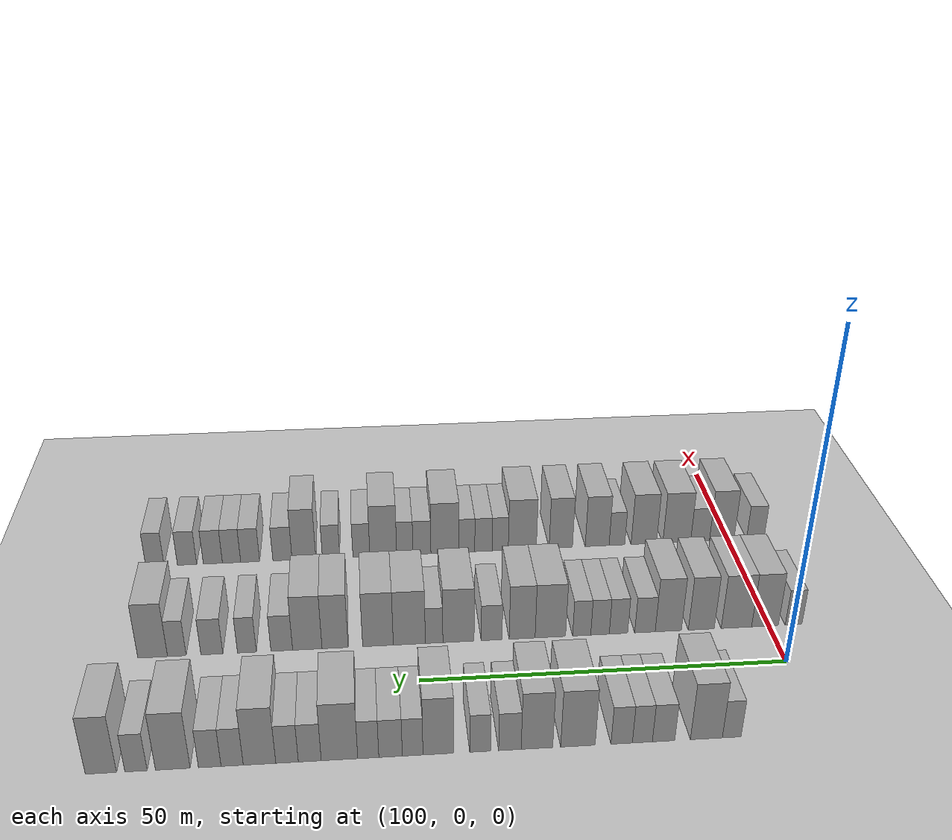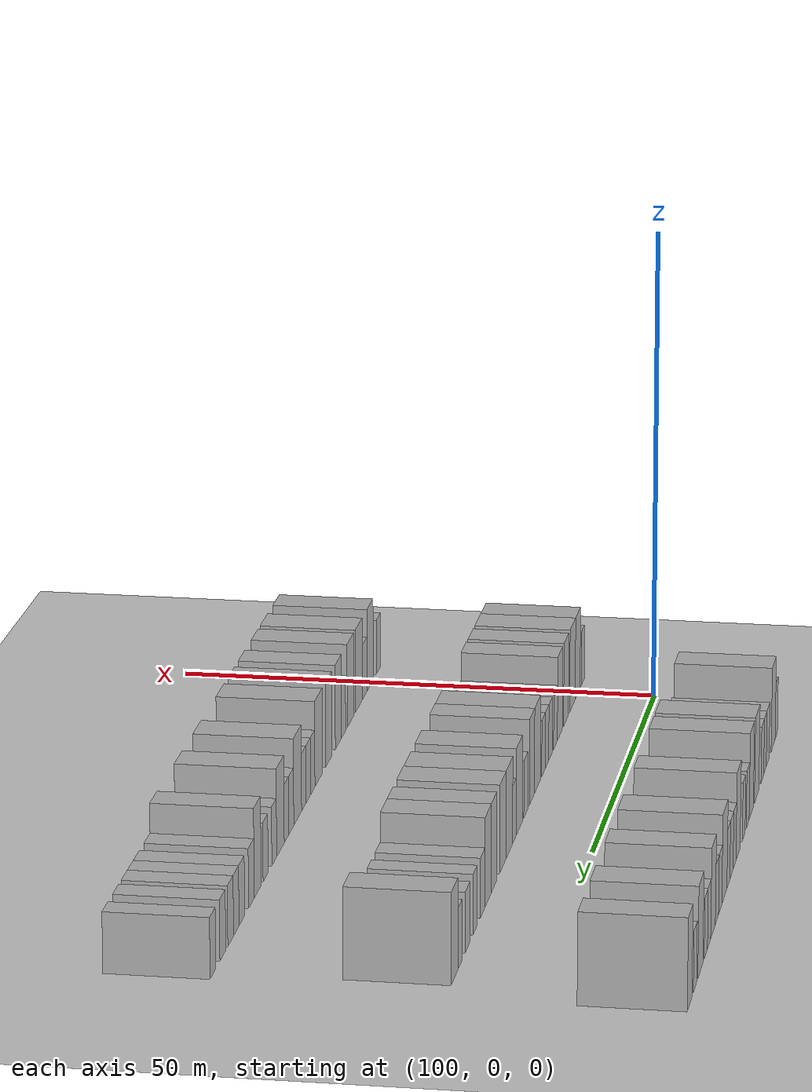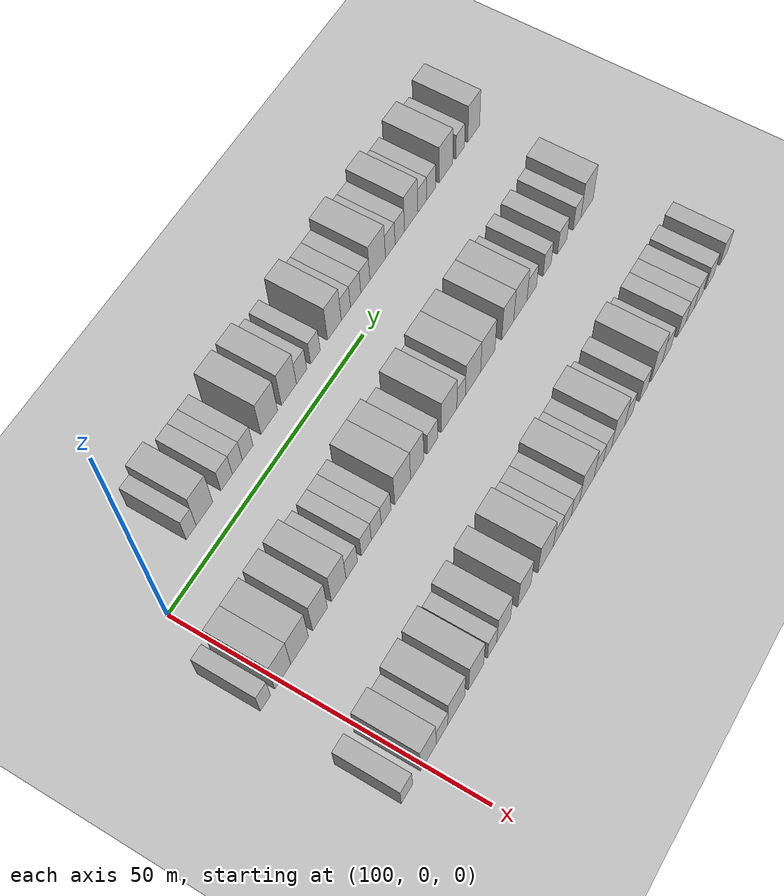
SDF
<sdf version="1.6">
 <world name="default">
  <include>
   <name>ground_plane_2</name>
   <uri>model://HANNAS_ground_plane</uri>
   <pose>100 0 0  0 0 0</pose>
  </include>
  <model name="building_658">
   <static>1</static>
   <pose>91.0000 11.3499 0 0.000000 0.000000 0.000000</pose>
   <link name="link">
    <pose>0 0 3.00 0 0 0</pose>
    <collision name="collision"><geometry><box><size>10.0000 2.4059 6.0000</size></box></geometry></collision>
    <visual name="visual">
     <cast_shadows>0</cast_shadows>
     <geometry><box><size>10.0000 2.4059 6.0000</size></box></geometry>
     <material>
      <script>
       <uri>model://HANNAS_wall/materials/scripts</uri>
       <uri>model://HANNAS_wall/materials/textures</uri>
       <name>vrc/HANNAS_wall</name>
      </script>
     </material>
    </visual>
   </link>
  </model>
  <model name="building_659">
   <static>1</static>
   <pose>91.0000 14.5982 0 0.000000 0.000000 0.000000</pose>
   <link name="link">
    <pose>0 0 4.50 0 0 0</pose>
    <collision name="collision"><geometry><box><size>10.0000 4.0908 9.0000</size></box></geometry></collision>
    <visual name="visual">
     <cast_shadows>0</cast_shadows>
     <geometry><box><size>10.0000 4.0908 9.0000</size></box></geometry>
     <material>
      <script>
       <uri>model://HANNAS_wall/materials/scripts</uri>
       <uri>model://HANNAS_wall/materials/textures</uri>
       <name>vrc/HANNAS_wall</name>
      </script>
     </material>
    </visual>
   </link>
  </model>
  <model name="building_660">
   <static>1</static>
   <pose>91.0000 20.0712 0 0.000000 0.000000 0.000000</pose>
   <link name="link">
    <pose>0 0 3.00 0 0 0</pose>
    <collision name="collision"><geometry><box><size>10.0000 2.8552 6.0000</size></box></geometry></collision>
    <visual name="visual">
     <cast_shadows>0</cast_shadows>
     <geometry><box><size>10.0000 2.8552 6.0000</size></box></geometry>
     <material>
      <script>
       <uri>model://HANNAS_wall/materials/scripts</uri>
       <uri>model://HANNAS_wall/materials/textures</uri>
       <name>vrc/HANNAS_wall</name>
      </script>
     </material>
    </visual>
   </link>
  </model>
  <model name="building_661">
   <static>1</static>
   <pose>91.0000 22.7672 0 0.000000 0.000000 0.000000</pose>
   <link name="link">
    <pose>0 0 3.00 0 0 0</pose>
    <collision name="collision"><geometry><box><size>10.0000 2.5369 6.0000</size></box></geometry></collision>
    <visual name="visual">
     <cast_shadows>0</cast_shadows>
     <geometry><box><size>10.0000 2.5369 6.0000</size></box></geometry>
     <material>
      <script>
       <uri>model://HANNAS_wall/materials/scripts</uri>
       <uri>model://HANNAS_wall/materials/textures</uri>
       <name>vrc/HANNAS_wall</name>
      </script>
     </material>
    </visual>
   </link>
  </model>
  <model name="building_662">
   <static>1</static>
   <pose>91.0000 25.3934 0 0.000000 0.000000 0.000000</pose>
   <link name="link">
    <pose>0 0 3.00 0 0 0</pose>
    <collision name="collision"><geometry><box><size>10.0000 2.7154 6.0000</size></box></geometry></collision>
    <visual name="visual">
     <cast_shadows>0</cast_shadows>
     <geometry><box><size>10.0000 2.7154 6.0000</size></box></geometry>
     <material>
      <script>
       <uri>model://HANNAS_wall/materials/scripts</uri>
       <uri>model://HANNAS_wall/materials/textures</uri>
       <name>vrc/HANNAS_wall</name>
      </script>
     </material>
    </visual>
   </link>
  </model>
  <model name="building_663">
   <static>1</static>
   <pose>91.0000 30.9321 0 0.000000 0.000000 0.000000</pose>
   <link name="link">
    <pose>0 0 4.50 0 0 0</pose>
    <collision name="collision"><geometry><box><size>10.0000 4.3619 9.0000</size></box></geometry></collision>
    <visual name="visual">
     <cast_shadows>0</cast_shadows>
     <geometry><box><size>10.0000 4.3619 9.0000</size></box></geometry>
     <material>
      <script>
       <uri>model://HANNAS_wall/materials/scripts</uri>
       <uri>model://HANNAS_wall/materials/textures</uri>
       <name>vrc/HANNAS_wall</name>
      </script>
     </material>
    </visual>
   </link>
  </model>
  <model name="building_664">
   <static>1</static>
   <pose>91.0000 36.0992 0 0.000000 0.000000 0.000000</pose>
   <link name="link">
    <pose>0 0 4.50 0 0 0</pose>
    <collision name="collision"><geometry><box><size>10.0000 3.9723 9.0000</size></box></geometry></collision>
    <visual name="visual">
     <cast_shadows>0</cast_shadows>
     <geometry><box><size>10.0000 3.9723 9.0000</size></box></geometry>
     <material>
      <script>
       <uri>model://HANNAS_wall/materials/scripts</uri>
       <uri>model://HANNAS_wall/materials/textures</uri>
       <name>vrc/HANNAS_wall</name>
      </script>
     </material>
    </visual>
   </link>
  </model>
  <model name="building_665">
   <static>1</static>
   <pose>91.0000 39.4949 0 0.000000 0.000000 0.000000</pose>
   <link name="link">
    <pose>0 0 3.00 0 0 0</pose>
    <collision name="collision"><geometry><box><size>10.0000 2.8190 6.0000</size></box></geometry></collision>
    <visual name="visual">
     <cast_shadows>0</cast_shadows>
     <geometry><box><size>10.0000 2.8190 6.0000</size></box></geometry>
     <material>
      <script>
       <uri>model://HANNAS_wall/materials/scripts</uri>
       <uri>model://HANNAS_wall/materials/textures</uri>
       <name>vrc/HANNAS_wall</name>
      </script>
     </material>
    </visual>
   </link>
  </model>
  <model name="building_666">
   <static>1</static>
   <pose>91.0000 43.2075 0 0.000000 0.000000 0.000000</pose>
   <link name="link">
    <pose>0 0 3.00 0 0 0</pose>
    <collision name="collision"><geometry><box><size>10.0000 2.6063 6.0000</size></box></geometry></collision>
    <visual name="visual">
     <cast_shadows>0</cast_shadows>
     <geometry><box><size>10.0000 2.6063 6.0000</size></box></geometry>
     <material>
      <script>
       <uri>model://HANNAS_wall/materials/scripts</uri>
       <uri>model://HANNAS_wall/materials/textures</uri>
       <name>vrc/HANNAS_wall</name>
      </script>
     </material>
    </visual>
   </link>
  </model>
  <model name="building_667">
   <static>1</static>
   <pose>91.0000 48.4225 0 0.000000 0.000000 0.000000</pose>
   <link name="link">
    <pose>0 0 4.50 0 0 0</pose>
    <collision name="collision"><geometry><box><size>10.0000 3.8235 9.0000</size></box></geometry></collision>
    <visual name="visual">
     <cast_shadows>0</cast_shadows>
     <geometry><box><size>10.0000 3.8235 9.0000</size></box></geometry>
     <material>
      <script>
       <uri>model://HANNAS_wall/materials/scripts</uri>
       <uri>model://HANNAS_wall/materials/textures</uri>
       <name>vrc/HANNAS_wall</name>
      </script>
     </material>
    </visual>
   </link>
  </model>
  <model name="building_668">
   <static>1</static>
   <pose>91.0000 51.6144 0 0.000000 0.000000 0.000000</pose>
   <link name="link">
    <pose>0 0 3.00 0 0 0</pose>
    <collision name="collision"><geometry><box><size>10.0000 2.5603 6.0000</size></box></geometry></collision>
    <visual name="visual">
     <cast_shadows>0</cast_shadows>
     <geometry><box><size>10.0000 2.5603 6.0000</size></box></geometry>
     <material>
      <script>
       <uri>model://HANNAS_wall/materials/scripts</uri>
       <uri>model://HANNAS_wall/materials/textures</uri>
       <name>vrc/HANNAS_wall</name>
      </script>
     </material>
    </visual>
   </link>
  </model>
  <model name="building_669">
   <static>1</static>
   <pose>91.0000 54.3471 0 0.000000 0.000000 0.000000</pose>
   <link name="link">
    <pose>0 0 3.00 0 0 0</pose>
    <collision name="collision"><geometry><box><size>10.0000 2.9051 6.0000</size></box></geometry></collision>
    <visual name="visual">
     <cast_shadows>0</cast_shadows>
     <geometry><box><size>10.0000 2.9051 6.0000</size></box></geometry>
     <material>
      <script>
       <uri>model://HANNAS_wall/materials/scripts</uri>
       <uri>model://HANNAS_wall/materials/textures</uri>
       <name>vrc/HANNAS_wall</name>
      </script>
     </material>
    </visual>
   </link>
  </model>
  <model name="building_670">
   <static>1</static>
   <pose>91.0000 57.0962 0 0.000000 0.000000 0.000000</pose>
   <link name="link">
    <pose>0 0 3.00 0 0 0</pose>
    <collision name="collision"><geometry><box><size>10.0000 2.5932 6.0000</size></box></geometry></collision>
    <visual name="visual">
     <cast_shadows>0</cast_shadows>
     <geometry><box><size>10.0000 2.5932 6.0000</size></box></geometry>
     <material>
      <script>
       <uri>model://HANNAS_wall/materials/scripts</uri>
       <uri>model://HANNAS_wall/materials/textures</uri>
       <name>vrc/HANNAS_wall</name>
      </script>
     </material>
    </visual>
   </link>
  </model>
  <model name="building_671">
   <static>1</static>
   <pose>91.0000 60.6395 0 0.000000 0.000000 0.000000</pose>
   <link name="link">
    <pose>0 0 4.50 0 0 0</pose>
    <collision name="collision"><geometry><box><size>10.0000 4.4934 9.0000</size></box></geometry></collision>
    <visual name="visual">
     <cast_shadows>0</cast_shadows>
     <geometry><box><size>10.0000 4.4934 9.0000</size></box></geometry>
     <material>
      <script>
       <uri>model://HANNAS_wall/materials/scripts</uri>
       <uri>model://HANNAS_wall/materials/textures</uri>
       <name>vrc/HANNAS_wall</name>
      </script>
     </material>
    </visual>
   </link>
  </model>
  <model name="building_672">
   <static>1</static>
   <pose>91.0000 64.2909 0 0.000000 0.000000 0.000000</pose>
   <link name="link">
    <pose>0 0 3.00 0 0 0</pose>
    <collision name="collision"><geometry><box><size>10.0000 2.8095 6.0000</size></box></geometry></collision>
    <visual name="visual">
     <cast_shadows>0</cast_shadows>
     <geometry><box><size>10.0000 2.8095 6.0000</size></box></geometry>
     <material>
      <script>
       <uri>model://HANNAS_wall/materials/scripts</uri>
       <uri>model://HANNAS_wall/materials/textures</uri>
       <name>vrc/HANNAS_wall</name>
      </script>
     </material>
    </visual>
   </link>
  </model>
  <model name="building_673">
   <static>1</static>
   <pose>91.0000 67.0746 0 0.000000 0.000000 0.000000</pose>
   <link name="link">
    <pose>0 0 3.00 0 0 0</pose>
    <collision name="collision"><geometry><box><size>10.0000 2.7578 6.0000</size></box></geometry></collision>
    <visual name="visual">
     <cast_shadows>0</cast_shadows>
     <geometry><box><size>10.0000 2.7578 6.0000</size></box></geometry>
     <material>
      <script>
       <uri>model://HANNAS_wall/materials/scripts</uri>
       <uri>model://HANNAS_wall/materials/textures</uri>
       <name>vrc/HANNAS_wall</name>
      </script>
     </material>
    </visual>
   </link>
  </model>
  <model name="building_674">
   <static>1</static>
   <pose>91.0000 70.4350 0 0.000000 0.000000 0.000000</pose>
   <link name="link">
    <pose>0 0 4.50 0 0 0</pose>
    <collision name="collision"><geometry><box><size>10.0000 3.9631 9.0000</size></box></geometry></collision>
    <visual name="visual">
     <cast_shadows>0</cast_shadows>
     <geometry><box><size>10.0000 3.9631 9.0000</size></box></geometry>
     <material>
      <script>
       <uri>model://HANNAS_wall/materials/scripts</uri>
       <uri>model://HANNAS_wall/materials/textures</uri>
       <name>vrc/HANNAS_wall</name>
      </script>
     </material>
    </visual>
   </link>
  </model>
  <model name="building_675">
   <static>1</static>
   <pose>91.0000 73.7645 0 0.000000 0.000000 0.000000</pose>
   <link name="link">
    <pose>0 0 3.00 0 0 0</pose>
    <collision name="collision"><geometry><box><size>10.0000 2.6958 6.0000</size></box></geometry></collision>
    <visual name="visual">
     <cast_shadows>0</cast_shadows>
     <geometry><box><size>10.0000 2.6958 6.0000</size></box></geometry>
     <material>
      <script>
       <uri>model://HANNAS_wall/materials/scripts</uri>
       <uri>model://HANNAS_wall/materials/textures</uri>
       <name>vrc/HANNAS_wall</name>
      </script>
     </material>
    </visual>
   </link>
  </model>
  <model name="building_676">
   <static>1</static>
   <pose>91.0000 76.4861 0 0.000000 0.000000 0.000000</pose>
   <link name="link">
    <pose>0 0 3.00 0 0 0</pose>
    <collision name="collision"><geometry><box><size>10.0000 2.7475 6.0000</size></box></geometry></collision>
    <visual name="visual">
     <cast_shadows>0</cast_shadows>
     <geometry><box><size>10.0000 2.7475 6.0000</size></box></geometry>
     <material>
      <script>
       <uri>model://HANNAS_wall/materials/scripts</uri>
       <uri>model://HANNAS_wall/materials/textures</uri>
       <name>vrc/HANNAS_wall</name>
      </script>
     </material>
    </visual>
   </link>
  </model>
  <model name="building_677">
   <static>1</static>
   <pose>91.0000 80.9545 0 0.000000 0.000000 0.000000</pose>
   <link name="link">
    <pose>0 0 4.50 0 0 0</pose>
    <collision name="collision"><geometry><box><size>10.0000 4.1893 9.0000</size></box></geometry></collision>
    <visual name="visual">
     <cast_shadows>0</cast_shadows>
     <geometry><box><size>10.0000 4.1893 9.0000</size></box></geometry>
     <material>
      <script>
       <uri>model://HANNAS_wall/materials/scripts</uri>
       <uri>model://HANNAS_wall/materials/textures</uri>
       <name>vrc/HANNAS_wall</name>
      </script>
     </material>
    </visual>
   </link>
  </model>
  <model name="building_678">
   <static>1</static>
   <pose>91.0000 85.3901 0 0.000000 0.000000 0.000000</pose>
   <link name="link">
    <pose>0 0 3.00 0 0 0</pose>
    <collision name="collision"><geometry><box><size>10.0000 2.6819 6.0000</size></box></geometry></collision>
    <visual name="visual">
     <cast_shadows>0</cast_shadows>
     <geometry><box><size>10.0000 2.6819 6.0000</size></box></geometry>
     <material>
      <script>
       <uri>model://HANNAS_wall/materials/scripts</uri>
       <uri>model://HANNAS_wall/materials/textures</uri>
       <name>vrc/HANNAS_wall</name>
      </script>
     </material>
    </visual>
   </link>
  </model>
  <model name="building_679">
   <static>1</static>
   <pose>91.0000 89.6052 0 0.000000 0.000000 0.000000</pose>
   <link name="link">
    <pose>0 0 4.50 0 0 0</pose>
    <collision name="collision"><geometry><box><size>10.0000 3.7483 9.0000</size></box></geometry></collision>
    <visual name="visual">
     <cast_shadows>0</cast_shadows>
     <geometry><box><size>10.0000 3.7483 9.0000</size></box></geometry>
     <material>
      <script>
       <uri>model://HANNAS_wall/materials/scripts</uri>
       <uri>model://HANNAS_wall/materials/textures</uri>
       <name>vrc/HANNAS_wall</name>
      </script>
     </material>
    </visual>
   </link>
  </model>
  <model name="building_855">
   <static>1</static>
   <pose>113.0000 -3.5424 0 0.000000 0.000000 0.000000</pose>
   <link name="link">
    <pose>0 0 3.00 0 0 0</pose>
    <collision name="collision"><geometry><box><size>10.0000 2.4279 6.0000</size></box></geometry></collision>
    <visual name="visual">
     <cast_shadows>0</cast_shadows>
     <geometry><box><size>10.0000 2.4279 6.0000</size></box></geometry>
     <material>
      <script>
       <uri>model://HANNAS_wall/materials/scripts</uri>
       <uri>model://HANNAS_wall/materials/textures</uri>
       <name>vrc/HANNAS_wall</name>
      </script>
     </material>
    </visual>
   </link>
  </model>
  <model name="building_856">
   <static>1</static>
   <pose>113.0000 0.6020 0 0.000000 0.000000 0.000000</pose>
   <link name="link">
    <pose>0 0 4.50 0 0 0</pose>
    <collision name="collision"><geometry><box><size>10.0000 3.8607 9.0000</size></box></geometry></collision>
    <visual name="visual">
     <cast_shadows>0</cast_shadows>
     <geometry><box><size>10.0000 3.8607 9.0000</size></box></geometry>
     <material>
      <script>
       <uri>model://HANNAS_wall/materials/scripts</uri>
       <uri>model://HANNAS_wall/materials/textures</uri>
       <name>vrc/HANNAS_wall</name>
      </script>
     </material>
    </visual>
   </link>
  </model>
  <model name="building_857">
   <static>1</static>
   <pose>113.0000 4.7238 0 0.000000 0.000000 0.000000</pose>
   <link name="link">
    <pose>0 0 4.50 0 0 0</pose>
    <collision name="collision"><geometry><box><size>10.0000 4.3829 9.0000</size></box></geometry></collision>
    <visual name="visual">
     <cast_shadows>0</cast_shadows>
     <geometry><box><size>10.0000 4.3829 9.0000</size></box></geometry>
     <material>
      <script>
       <uri>model://HANNAS_wall/materials/scripts</uri>
       <uri>model://HANNAS_wall/materials/textures</uri>
       <name>vrc/HANNAS_wall</name>
      </script>
     </material>
    </visual>
   </link>
  </model>
  <model name="building_858">
   <static>1</static>
   <pose>113.0000 9.7739 0 0.000000 0.000000 0.000000</pose>
   <link name="link">
    <pose>0 0 4.50 0 0 0</pose>
    <collision name="collision"><geometry><box><size>10.0000 3.7174 9.0000</size></box></geometry></collision>
    <visual name="visual">
     <cast_shadows>0</cast_shadows>
     <geometry><box><size>10.0000 3.7174 9.0000</size></box></geometry>
     <material>
      <script>
       <uri>model://HANNAS_wall/materials/scripts</uri>
       <uri>model://HANNAS_wall/materials/textures</uri>
       <name>vrc/HANNAS_wall</name>
      </script>
     </material>
    </visual>
   </link>
  </model>
  <model name="building_859">
   <static>1</static>
   <pose>113.0000 14.5035 0 0.000000 0.000000 0.000000</pose>
   <link name="link">
    <pose>0 0 4.50 0 0 0</pose>
    <collision name="collision"><geometry><box><size>10.0000 3.7417 9.0000</size></box></geometry></collision>
    <visual name="visual">
     <cast_shadows>0</cast_shadows>
     <geometry><box><size>10.0000 3.7417 9.0000</size></box></geometry>
     <material>
      <script>
       <uri>model://HANNAS_wall/materials/scripts</uri>
       <uri>model://HANNAS_wall/materials/textures</uri>
       <name>vrc/HANNAS_wall</name>
      </script>
     </material>
    </visual>
   </link>
  </model>
  <model name="building_860">
   <static>1</static>
   <pose>113.0000 17.8376 0 0.000000 0.000000 0.000000</pose>
   <link name="link">
    <pose>0 0 3.00 0 0 0</pose>
    <collision name="collision"><geometry><box><size>10.0000 2.9266 6.0000</size></box></geometry></collision>
    <visual name="visual">
     <cast_shadows>0</cast_shadows>
     <geometry><box><size>10.0000 2.9266 6.0000</size></box></geometry>
     <material>
      <script>
       <uri>model://HANNAS_wall/materials/scripts</uri>
       <uri>model://HANNAS_wall/materials/textures</uri>
       <name>vrc/HANNAS_wall</name>
      </script>
     </material>
    </visual>
   </link>
  </model>
  <model name="building_861">
   <static>1</static>
   <pose>113.0000 21.6093 0 0.000000 0.000000 0.000000</pose>
   <link name="link">
    <pose>0 0 3.00 0 0 0</pose>
    <collision name="collision"><geometry><box><size>10.0000 2.6167 6.0000</size></box></geometry></collision>
    <visual name="visual">
     <cast_shadows>0</cast_shadows>
     <geometry><box><size>10.0000 2.6167 6.0000</size></box></geometry>
     <material>
      <script>
       <uri>model://HANNAS_wall/materials/scripts</uri>
       <uri>model://HANNAS_wall/materials/textures</uri>
       <name>vrc/HANNAS_wall</name>
      </script>
     </material>
    </visual>
   </link>
  </model>
  <model name="building_862">
   <static>1</static>
   <pose>113.0000 24.2303 0 0.000000 0.000000 0.000000</pose>
   <link name="link">
    <pose>0 0 3.00 0 0 0</pose>
    <collision name="collision"><geometry><box><size>10.0000 2.6253 6.0000</size></box></geometry></collision>
    <visual name="visual">
     <cast_shadows>0</cast_shadows>
     <geometry><box><size>10.0000 2.6253 6.0000</size></box></geometry>
     <material>
      <script>
       <uri>model://HANNAS_wall/materials/scripts</uri>
       <uri>model://HANNAS_wall/materials/textures</uri>
       <name>vrc/HANNAS_wall</name>
      </script>
     </material>
    </visual>
   </link>
  </model>
  <model name="building_863">
   <static>1</static>
   <pose>113.0000 26.8261 0 0.000000 0.000000 0.000000</pose>
   <link name="link">
    <pose>0 0 3.00 0 0 0</pose>
    <collision name="collision"><geometry><box><size>10.0000 2.5662 6.0000</size></box></geometry></collision>
    <visual name="visual">
     <cast_shadows>0</cast_shadows>
     <geometry><box><size>10.0000 2.5662 6.0000</size></box></geometry>
     <material>
      <script>
       <uri>model://HANNAS_wall/materials/scripts</uri>
       <uri>model://HANNAS_wall/materials/textures</uri>
       <name>vrc/HANNAS_wall</name>
      </script>
     </material>
    </visual>
   </link>
  </model>
  <model name="building_864">
   <static>1</static>
   <pose>113.0000 31.2596 0 0.000000 0.000000 0.000000</pose>
   <link name="link">
    <pose>0 0 4.50 0 0 0</pose>
    <collision name="collision"><geometry><box><size>10.0000 4.3008 9.0000</size></box></geometry></collision>
    <visual name="visual">
     <cast_shadows>0</cast_shadows>
     <geometry><box><size>10.0000 4.3008 9.0000</size></box></geometry>
     <material>
      <script>
       <uri>model://HANNAS_wall/materials/scripts</uri>
       <uri>model://HANNAS_wall/materials/textures</uri>
       <name>vrc/HANNAS_wall</name>
      </script>
     </material>
    </visual>
   </link>
  </model>
  <model name="building_865">
   <static>1</static>
   <pose>113.0000 35.2356 0 0.000000 0.000000 0.000000</pose>
   <link name="link">
    <pose>0 0 4.50 0 0 0</pose>
    <collision name="collision"><geometry><box><size>10.0000 3.6513 9.0000</size></box></geometry></collision>
    <visual name="visual">
     <cast_shadows>0</cast_shadows>
     <geometry><box><size>10.0000 3.6513 9.0000</size></box></geometry>
     <material>
      <script>
       <uri>model://HANNAS_wall/materials/scripts</uri>
       <uri>model://HANNAS_wall/materials/textures</uri>
       <name>vrc/HANNAS_wall</name>
      </script>
     </material>
    </visual>
   </link>
  </model>
  <model name="building_866">
   <static>1</static>
   <pose>113.0000 39.5190 0 0.000000 0.000000 0.000000</pose>
   <link name="link">
    <pose>0 0 3.00 0 0 0</pose>
    <collision name="collision"><geometry><box><size>10.0000 2.9156 6.0000</size></box></geometry></collision>
    <visual name="visual">
     <cast_shadows>0</cast_shadows>
     <geometry><box><size>10.0000 2.9156 6.0000</size></box></geometry>
     <material>
      <script>
       <uri>model://HANNAS_wall/materials/scripts</uri>
       <uri>model://HANNAS_wall/materials/textures</uri>
       <name>vrc/HANNAS_wall</name>
      </script>
     </material>
    </visual>
   </link>
  </model>
  <model name="building_867">
   <static>1</static>
   <pose>113.0000 44.1545 0 0.000000 0.000000 0.000000</pose>
   <link name="link">
    <pose>0 0 4.50 0 0 0</pose>
    <collision name="collision"><geometry><box><size>10.0000 4.3552 9.0000</size></box></geometry></collision>
    <visual name="visual">
     <cast_shadows>0</cast_shadows>
     <geometry><box><size>10.0000 4.3552 9.0000</size></box></geometry>
     <material>
      <script>
       <uri>model://HANNAS_wall/materials/scripts</uri>
       <uri>model://HANNAS_wall/materials/textures</uri>
       <name>vrc/HANNAS_wall</name>
      </script>
     </material>
    </visual>
   </link>
  </model>
  <model name="building_868">
   <static>1</static>
   <pose>113.0000 47.5543 0 0.000000 0.000000 0.000000</pose>
   <link name="link">
    <pose>0 0 3.00 0 0 0</pose>
    <collision name="collision"><geometry><box><size>10.0000 2.4444 6.0000</size></box></geometry></collision>
    <visual name="visual">
     <cast_shadows>0</cast_shadows>
     <geometry><box><size>10.0000 2.4444 6.0000</size></box></geometry>
     <material>
      <script>
       <uri>model://HANNAS_wall/materials/scripts</uri>
       <uri>model://HANNAS_wall/materials/textures</uri>
       <name>vrc/HANNAS_wall</name>
      </script>
     </material>
    </visual>
   </link>
  </model>
  <model name="building_869">
   <static>1</static>
   <pose>113.0000 51.0010 0 0.000000 0.000000 0.000000</pose>
   <link name="link">
    <pose>0 0 4.50 0 0 0</pose>
    <collision name="collision"><geometry><box><size>10.0000 4.4490 9.0000</size></box></geometry></collision>
    <visual name="visual">
     <cast_shadows>0</cast_shadows>
     <geometry><box><size>10.0000 4.4490 9.0000</size></box></geometry>
     <material>
      <script>
       <uri>model://HANNAS_wall/materials/scripts</uri>
       <uri>model://HANNAS_wall/materials/textures</uri>
       <name>vrc/HANNAS_wall</name>
      </script>
     </material>
    </visual>
   </link>
  </model>
  <model name="building_870">
   <static>1</static>
   <pose>113.0000 55.3456 0 0.000000 0.000000 0.000000</pose>
   <link name="link">
    <pose>0 0 4.50 0 0 0</pose>
    <collision name="collision"><geometry><box><size>10.0000 4.2403 9.0000</size></box></geometry></collision>
    <visual name="visual">
     <cast_shadows>0</cast_shadows>
     <geometry><box><size>10.0000 4.2403 9.0000</size></box></geometry>
     <material>
      <script>
       <uri>model://HANNAS_wall/materials/scripts</uri>
       <uri>model://HANNAS_wall/materials/textures</uri>
       <name>vrc/HANNAS_wall</name>
      </script>
     </material>
    </visual>
   </link>
  </model>
  <model name="building_871">
   <static>1</static>
   <pose>113.0000 61.2664 0 0.000000 0.000000 0.000000</pose>
   <link name="link">
    <pose>0 0 4.50 0 0 0</pose>
    <collision name="collision"><geometry><box><size>10.0000 3.6012 9.0000</size></box></geometry></collision>
    <visual name="visual">
     <cast_shadows>0</cast_shadows>
     <geometry><box><size>10.0000 3.6012 9.0000</size></box></geometry>
     <material>
      <script>
       <uri>model://HANNAS_wall/materials/scripts</uri>
       <uri>model://HANNAS_wall/materials/textures</uri>
       <name>vrc/HANNAS_wall</name>
      </script>
     </material>
    </visual>
   </link>
  </model>
  <model name="building_872">
   <static>1</static>
   <pose>113.0000 65.0893 0 0.000000 0.000000 0.000000</pose>
   <link name="link">
    <pose>0 0 4.50 0 0 0</pose>
    <collision name="collision"><geometry><box><size>10.0000 4.0446 9.0000</size></box></geometry></collision>
    <visual name="visual">
     <cast_shadows>0</cast_shadows>
     <geometry><box><size>10.0000 4.0446 9.0000</size></box></geometry>
     <material>
      <script>
       <uri>model://HANNAS_wall/materials/scripts</uri>
       <uri>model://HANNAS_wall/materials/textures</uri>
       <name>vrc/HANNAS_wall</name>
      </script>
     </material>
    </visual>
   </link>
  </model>
  <model name="building_873">
   <static>1</static>
   <pose>113.0000 68.5951 0 0.000000 0.000000 0.000000</pose>
   <link name="link">
    <pose>0 0 3.00 0 0 0</pose>
    <collision name="collision"><geometry><box><size>10.0000 2.9669 6.0000</size></box></geometry></collision>
    <visual name="visual">
     <cast_shadows>0</cast_shadows>
     <geometry><box><size>10.0000 2.9669 6.0000</size></box></geometry>
     <material>
      <script>
       <uri>model://HANNAS_wall/materials/scripts</uri>
       <uri>model://HANNAS_wall/materials/textures</uri>
       <name>vrc/HANNAS_wall</name>
      </script>
     </material>
    </visual>
   </link>
  </model>
  <model name="building_874">
   <static>1</static>
   <pose>113.0000 73.3601 0 0.000000 0.000000 0.000000</pose>
   <link name="link">
    <pose>0 0 3.00 0 0 0</pose>
    <collision name="collision"><geometry><box><size>10.0000 2.5631 6.0000</size></box></geometry></collision>
    <visual name="visual">
     <cast_shadows>0</cast_shadows>
     <geometry><box><size>10.0000 2.5631 6.0000</size></box></geometry>
     <material>
      <script>
       <uri>model://HANNAS_wall/materials/scripts</uri>
       <uri>model://HANNAS_wall/materials/textures</uri>
       <name>vrc/HANNAS_wall</name>
      </script>
     </material>
    </visual>
   </link>
  </model>
  <model name="building_875">
   <static>1</static>
   <pose>113.0000 78.1346 0 0.000000 0.000000 0.000000</pose>
   <link name="link">
    <pose>0 0 3.00 0 0 0</pose>
    <collision name="collision"><geometry><box><size>10.0000 2.9860 6.0000</size></box></geometry></collision>
    <visual name="visual">
     <cast_shadows>0</cast_shadows>
     <geometry><box><size>10.0000 2.9860 6.0000</size></box></geometry>
     <material>
      <script>
       <uri>model://HANNAS_wall/materials/scripts</uri>
       <uri>model://HANNAS_wall/materials/textures</uri>
       <name>vrc/HANNAS_wall</name>
      </script>
     </material>
    </visual>
   </link>
  </model>
  <model name="building_876">
   <static>1</static>
   <pose>113.0000 82.8908 0 0.000000 0.000000 0.000000</pose>
   <link name="link">
    <pose>0 0 3.00 0 0 0</pose>
    <collision name="collision"><geometry><box><size>10.0000 2.5264 6.0000</size></box></geometry></collision>
    <visual name="visual">
     <cast_shadows>0</cast_shadows>
     <geometry><box><size>10.0000 2.5264 6.0000</size></box></geometry>
     <material>
      <script>
       <uri>model://HANNAS_wall/materials/scripts</uri>
       <uri>model://HANNAS_wall/materials/textures</uri>
       <name>vrc/HANNAS_wall</name>
      </script>
     </material>
    </visual>
   </link>
  </model>
  <model name="building_877">
   <static>1</static>
   <pose>113.0000 86.1593 0 0.000000 0.000000 0.000000</pose>
   <link name="link">
    <pose>0 0 4.50 0 0 0</pose>
    <collision name="collision"><geometry><box><size>10.0000 4.0107 9.0000</size></box></geometry></collision>
    <visual name="visual">
     <cast_shadows>0</cast_shadows>
     <geometry><box><size>10.0000 4.0107 9.0000</size></box></geometry>
     <material>
      <script>
       <uri>model://HANNAS_wall/materials/scripts</uri>
       <uri>model://HANNAS_wall/materials/textures</uri>
       <name>vrc/HANNAS_wall</name>
      </script>
     </material>
    </visual>
   </link>
  </model>
  <model name="building_1039">
   <static>1</static>
   <pose>135.0000 -4.3132 0 0.000000 0.000000 0.000000</pose>
   <link name="link">
    <pose>0 0 3.00 0 0 0</pose>
    <collision name="collision"><geometry><box><size>10.0000 2.8102 6.0000</size></box></geometry></collision>
    <visual name="visual">
     <cast_shadows>0</cast_shadows>
     <geometry><box><size>10.0000 2.8102 6.0000</size></box></geometry>
     <material>
      <script>
       <uri>model://HANNAS_wall/materials/scripts</uri>
       <uri>model://HANNAS_wall/materials/textures</uri>
       <name>vrc/HANNAS_wall</name>
      </script>
     </material>
    </visual>
   </link>
  </model>
  <model name="building_1040">
   <static>1</static>
   <pose>135.0000 1.0506 0 0.000000 0.000000 0.000000</pose>
   <link name="link">
    <pose>0 0 4.50 0 0 0</pose>
    <collision name="collision"><geometry><box><size>10.0000 3.9174 9.0000</size></box></geometry></collision>
    <visual name="visual">
     <cast_shadows>0</cast_shadows>
     <geometry><box><size>10.0000 3.9174 9.0000</size></box></geometry>
     <material>
      <script>
       <uri>model://HANNAS_wall/materials/scripts</uri>
       <uri>model://HANNAS_wall/materials/textures</uri>
       <name>vrc/HANNAS_wall</name>
      </script>
     </material>
    </visual>
   </link>
  </model>
  <model name="building_1041">
   <static>1</static>
   <pose>135.0000 4.5071 0 0.000000 0.000000 0.000000</pose>
   <link name="link">
    <pose>0 0 3.00 0 0 0</pose>
    <collision name="collision"><geometry><box><size>10.0000 2.9955 6.0000</size></box></geometry></collision>
    <visual name="visual">
     <cast_shadows>0</cast_shadows>
     <geometry><box><size>10.0000 2.9955 6.0000</size></box></geometry>
     <material>
      <script>
       <uri>model://HANNAS_wall/materials/scripts</uri>
       <uri>model://HANNAS_wall/materials/textures</uri>
       <name>vrc/HANNAS_wall</name>
      </script>
     </material>
    </visual>
   </link>
  </model>
  <model name="building_1042">
   <static>1</static>
   <pose>135.0000 8.2063 0 0.000000 0.000000 0.000000</pose>
   <link name="link">
    <pose>0 0 4.50 0 0 0</pose>
    <collision name="collision"><geometry><box><size>10.0000 4.4030 9.0000</size></box></geometry></collision>
    <visual name="visual">
     <cast_shadows>0</cast_shadows>
     <geometry><box><size>10.0000 4.4030 9.0000</size></box></geometry>
     <material>
      <script>
       <uri>model://HANNAS_wall/materials/scripts</uri>
       <uri>model://HANNAS_wall/materials/textures</uri>
       <name>vrc/HANNAS_wall</name>
      </script>
     </material>
    </visual>
   </link>
  </model>
  <model name="building_1043">
   <static>1</static>
   <pose>135.0000 13.4149 0 0.000000 0.000000 0.000000</pose>
   <link name="link">
    <pose>0 0 4.50 0 0 0</pose>
    <collision name="collision"><geometry><box><size>10.0000 4.0141 9.0000</size></box></geometry></collision>
    <visual name="visual">
     <cast_shadows>0</cast_shadows>
     <geometry><box><size>10.0000 4.0141 9.0000</size></box></geometry>
     <material>
      <script>
       <uri>model://HANNAS_wall/materials/scripts</uri>
       <uri>model://HANNAS_wall/materials/textures</uri>
       <name>vrc/HANNAS_wall</name>
      </script>
     </material>
    </visual>
   </link>
  </model>
  <model name="building_1044">
   <static>1</static>
   <pose>135.0000 17.6557 0 0.000000 0.000000 0.000000</pose>
   <link name="link">
    <pose>0 0 3.00 0 0 0</pose>
    <collision name="collision"><geometry><box><size>10.0000 2.4675 6.0000</size></box></geometry></collision>
    <visual name="visual">
     <cast_shadows>0</cast_shadows>
     <geometry><box><size>10.0000 2.4675 6.0000</size></box></geometry>
     <material>
      <script>
       <uri>model://HANNAS_wall/materials/scripts</uri>
       <uri>model://HANNAS_wall/materials/textures</uri>
       <name>vrc/HANNAS_wall</name>
      </script>
     </material>
    </visual>
   </link>
  </model>
  <model name="building_1045">
   <static>1</static>
   <pose>135.0000 20.7673 0 0.000000 0.000000 0.000000</pose>
   <link name="link">
    <pose>0 0 4.50 0 0 0</pose>
    <collision name="collision"><geometry><box><size>10.0000 3.7556 9.0000</size></box></geometry></collision>
    <visual name="visual">
     <cast_shadows>0</cast_shadows>
     <geometry><box><size>10.0000 3.7556 9.0000</size></box></geometry>
     <material>
      <script>
       <uri>model://HANNAS_wall/materials/scripts</uri>
       <uri>model://HANNAS_wall/materials/textures</uri>
       <name>vrc/HANNAS_wall</name>
      </script>
     </material>
    </visual>
   </link>
  </model>
  <model name="building_1046">
   <static>1</static>
   <pose>135.0000 26.4716 0 0.000000 0.000000 0.000000</pose>
   <link name="link">
    <pose>0 0 4.50 0 0 0</pose>
    <collision name="collision"><geometry><box><size>10.0000 3.6531 9.0000</size></box></geometry></collision>
    <visual name="visual">
     <cast_shadows>0</cast_shadows>
     <geometry><box><size>10.0000 3.6531 9.0000</size></box></geometry>
     <material>
      <script>
       <uri>model://HANNAS_wall/materials/scripts</uri>
       <uri>model://HANNAS_wall/materials/textures</uri>
       <name>vrc/HANNAS_wall</name>
      </script>
     </material>
    </visual>
   </link>
  </model>
  <model name="building_1047">
   <static>1</static>
   <pose>135.0000 32.4850 0 0.000000 0.000000 0.000000</pose>
   <link name="link">
    <pose>0 0 4.50 0 0 0</pose>
    <collision name="collision"><geometry><box><size>10.0000 4.3736 9.0000</size></box></geometry></collision>
    <visual name="visual">
     <cast_shadows>0</cast_shadows>
     <geometry><box><size>10.0000 4.3736 9.0000</size></box></geometry>
     <material>
      <script>
       <uri>model://HANNAS_wall/materials/scripts</uri>
       <uri>model://HANNAS_wall/materials/textures</uri>
       <name>vrc/HANNAS_wall</name>
      </script>
     </material>
    </visual>
   </link>
  </model>
  <model name="building_1048">
   <static>1</static>
   <pose>135.0000 35.9197 0 0.000000 0.000000 0.000000</pose>
   <link name="link">
    <pose>0 0 3.00 0 0 0</pose>
    <collision name="collision"><geometry><box><size>10.0000 2.4958 6.0000</size></box></geometry></collision>
    <visual name="visual">
     <cast_shadows>0</cast_shadows>
     <geometry><box><size>10.0000 2.4958 6.0000</size></box></geometry>
     <material>
      <script>
       <uri>model://HANNAS_wall/materials/scripts</uri>
       <uri>model://HANNAS_wall/materials/textures</uri>
       <name>vrc/HANNAS_wall</name>
      </script>
     </material>
    </visual>
   </link>
  </model>
  <model name="building_1049">
   <static>1</static>
   <pose>135.0000 38.5197 0 0.000000 0.000000 0.000000</pose>
   <link name="link">
    <pose>0 0 3.00 0 0 0</pose>
    <collision name="collision"><geometry><box><size>10.0000 2.7043 6.0000</size></box></geometry></collision>
    <visual name="visual">
     <cast_shadows>0</cast_shadows>
     <geometry><box><size>10.0000 2.7043 6.0000</size></box></geometry>
     <material>
      <script>
       <uri>model://HANNAS_wall/materials/scripts</uri>
       <uri>model://HANNAS_wall/materials/textures</uri>
       <name>vrc/HANNAS_wall</name>
      </script>
     </material>
    </visual>
   </link>
  </model>
  <model name="building_1050">
   <static>1</static>
   <pose>135.0000 41.0886 0 0.000000 0.000000 0.000000</pose>
   <link name="link">
    <pose>0 0 3.00 0 0 0</pose>
    <collision name="collision"><geometry><box><size>10.0000 2.4333 6.0000</size></box></geometry></collision>
    <visual name="visual">
     <cast_shadows>0</cast_shadows>
     <geometry><box><size>10.0000 2.4333 6.0000</size></box></geometry>
     <material>
      <script>
       <uri>model://HANNAS_wall/materials/scripts</uri>
       <uri>model://HANNAS_wall/materials/textures</uri>
       <name>vrc/HANNAS_wall</name>
      </script>
     </material>
    </visual>
   </link>
  </model>
  <model name="building_1051">
   <static>1</static>
   <pose>135.0000 44.4789 0 0.000000 0.000000 0.000000</pose>
   <link name="link">
    <pose>0 0 4.50 0 0 0</pose>
    <collision name="collision"><geometry><box><size>10.0000 4.3473 9.0000</size></box></geometry></collision>
    <visual name="visual">
     <cast_shadows>0</cast_shadows>
     <geometry><box><size>10.0000 4.3473 9.0000</size></box></geometry>
     <material>
      <script>
       <uri>model://HANNAS_wall/materials/scripts</uri>
       <uri>model://HANNAS_wall/materials/textures</uri>
       <name>vrc/HANNAS_wall</name>
      </script>
     </material>
    </visual>
   </link>
  </model>
  <model name="building_1052">
   <static>1</static>
   <pose>135.0000 48.0359 0 0.000000 0.000000 0.000000</pose>
   <link name="link">
    <pose>0 0 3.00 0 0 0</pose>
    <collision name="collision"><geometry><box><size>10.0000 2.7666 6.0000</size></box></geometry></collision>
    <visual name="visual">
     <cast_shadows>0</cast_shadows>
     <geometry><box><size>10.0000 2.7666 6.0000</size></box></geometry>
     <material>
      <script>
       <uri>model://HANNAS_wall/materials/scripts</uri>
       <uri>model://HANNAS_wall/materials/textures</uri>
       <name>vrc/HANNAS_wall</name>
      </script>
     </material>
    </visual>
   </link>
  </model>
  <model name="building_1053">
   <static>1</static>
   <pose>135.0000 50.6652 0 0.000000 0.000000 0.000000</pose>
   <link name="link">
    <pose>0 0 3.00 0 0 0</pose>
    <collision name="collision"><geometry><box><size>10.0000 2.4920 6.0000</size></box></geometry></collision>
    <visual name="visual">
     <cast_shadows>0</cast_shadows>
     <geometry><box><size>10.0000 2.4920 6.0000</size></box></geometry>
     <material>
      <script>
       <uri>model://HANNAS_wall/materials/scripts</uri>
       <uri>model://HANNAS_wall/materials/textures</uri>
       <name>vrc/HANNAS_wall</name>
      </script>
     </material>
    </visual>
   </link>
  </model>
  <model name="building_1054">
   <static>1</static>
   <pose>135.0000 53.9699 0 0.000000 0.000000 0.000000</pose>
   <link name="link">
    <pose>0 0 4.50 0 0 0</pose>
    <collision name="collision"><geometry><box><size>10.0000 4.1174 9.0000</size></box></geometry></collision>
    <visual name="visual">
     <cast_shadows>0</cast_shadows>
     <geometry><box><size>10.0000 4.1174 9.0000</size></box></geometry>
     <material>
      <script>
       <uri>model://HANNAS_wall/materials/scripts</uri>
       <uri>model://HANNAS_wall/materials/textures</uri>
       <name>vrc/HANNAS_wall</name>
      </script>
     </material>
    </visual>
   </link>
  </model>
  <model name="building_1055">
   <static>1</static>
   <pose>135.0000 57.3280 0 0.000000 0.000000 0.000000</pose>
   <link name="link">
    <pose>0 0 3.00 0 0 0</pose>
    <collision name="collision"><geometry><box><size>10.0000 2.5989 6.0000</size></box></geometry></collision>
    <visual name="visual">
     <cast_shadows>0</cast_shadows>
     <geometry><box><size>10.0000 2.5989 6.0000</size></box></geometry>
     <material>
      <script>
       <uri>model://HANNAS_wall/materials/scripts</uri>
       <uri>model://HANNAS_wall/materials/textures</uri>
       <name>vrc/HANNAS_wall</name>
      </script>
     </material>
    </visual>
   </link>
  </model>
  <model name="building_1056">
   <static>1</static>
   <pose>135.0000 61.9573 0 0.000000 0.000000 0.000000</pose>
   <link name="link">
    <pose>0 0 3.00 0 0 0</pose>
    <collision name="collision"><geometry><box><size>10.0000 2.6597 6.0000</size></box></geometry></collision>
    <visual name="visual">
     <cast_shadows>0</cast_shadows>
     <geometry><box><size>10.0000 2.6597 6.0000</size></box></geometry>
     <material>
      <script>
       <uri>model://HANNAS_wall/materials/scripts</uri>
       <uri>model://HANNAS_wall/materials/textures</uri>
       <name>vrc/HANNAS_wall</name>
      </script>
     </material>
    </visual>
   </link>
  </model>
  <model name="building_1057">
   <static>1</static>
   <pose>135.0000 66.0959 0 0.000000 0.000000 0.000000</pose>
   <link name="link">
    <pose>0 0 4.50 0 0 0</pose>
    <collision name="collision"><geometry><box><size>10.0000 3.6174 9.0000</size></box></geometry></collision>
    <visual name="visual">
     <cast_shadows>0</cast_shadows>
     <geometry><box><size>10.0000 3.6174 9.0000</size></box></geometry>
     <material>
      <script>
       <uri>model://HANNAS_wall/materials/scripts</uri>
       <uri>model://HANNAS_wall/materials/textures</uri>
       <name>vrc/HANNAS_wall</name>
      </script>
     </material>
    </visual>
   </link>
  </model>
  <model name="building_1058">
   <static>1</static>
   <pose>135.0000 69.3628 0 0.000000 0.000000 0.000000</pose>
   <link name="link">
    <pose>0 0 3.00 0 0 0</pose>
    <collision name="collision"><geometry><box><size>10.0000 2.9163 6.0000</size></box></geometry></collision>
    <visual name="visual">
     <cast_shadows>0</cast_shadows>
     <geometry><box><size>10.0000 2.9163 6.0000</size></box></geometry>
     <material>
      <script>
       <uri>model://HANNAS_wall/materials/scripts</uri>
       <uri>model://HANNAS_wall/materials/textures</uri>
       <name>vrc/HANNAS_wall</name>
      </script>
     </material>
    </visual>
   </link>
  </model>
  <model name="building_1059">
   <static>1</static>
   <pose>135.0000 74.2553 0 0.000000 0.000000 0.000000</pose>
   <link name="link">
    <pose>0 0 3.00 0 0 0</pose>
    <collision name="collision"><geometry><box><size>10.0000 2.8687 6.0000</size></box></geometry></collision>
    <visual name="visual">
     <cast_shadows>0</cast_shadows>
     <geometry><box><size>10.0000 2.8687 6.0000</size></box></geometry>
     <material>
      <script>
       <uri>model://HANNAS_wall/materials/scripts</uri>
       <uri>model://HANNAS_wall/materials/textures</uri>
       <name>vrc/HANNAS_wall</name>
      </script>
     </material>
    </visual>
   </link>
  </model>
  <model name="building_1060">
   <static>1</static>
   <pose>135.0000 77.0662 0 0.000000 0.000000 0.000000</pose>
   <link name="link">
    <pose>0 0 3.00 0 0 0</pose>
    <collision name="collision"><geometry><box><size>10.0000 2.7531 6.0000</size></box></geometry></collision>
    <visual name="visual">
     <cast_shadows>0</cast_shadows>
     <geometry><box><size>10.0000 2.7531 6.0000</size></box></geometry>
     <material>
      <script>
       <uri>model://HANNAS_wall/materials/scripts</uri>
       <uri>model://HANNAS_wall/materials/textures</uri>
       <name>vrc/HANNAS_wall</name>
      </script>
     </material>
    </visual>
   </link>
  </model>
  <model name="building_1061">
   <static>1</static>
   <pose>135.0000 79.8835 0 0.000000 0.000000 0.000000</pose>
   <link name="link">
    <pose>0 0 3.00 0 0 0</pose>
    <collision name="collision"><geometry><box><size>10.0000 2.8814 6.0000</size></box></geometry></collision>
    <visual name="visual">
     <cast_shadows>0</cast_shadows>
     <geometry><box><size>10.0000 2.8814 6.0000</size></box></geometry>
     <material>
      <script>
       <uri>model://HANNAS_wall/materials/scripts</uri>
       <uri>model://HANNAS_wall/materials/textures</uri>
       <name>vrc/HANNAS_wall</name>
      </script>
     </material>
    </visual>
   </link>
  </model>
  <model name="building_1062">
   <static>1</static>
   <pose>135.0000 83.7712 0 0.000000 0.000000 0.000000</pose>
   <link name="link">
    <pose>0 0 3.00 0 0 0</pose>
    <collision name="collision"><geometry><box><size>10.0000 2.8941 6.0000</size></box></geometry></collision>
    <visual name="visual">
     <cast_shadows>0</cast_shadows>
     <geometry><box><size>10.0000 2.8941 6.0000</size></box></geometry>
     <material>
      <script>
       <uri>model://HANNAS_wall/materials/scripts</uri>
       <uri>model://HANNAS_wall/materials/textures</uri>
       <name>vrc/HANNAS_wall</name>
      </script>
     </material>
    </visual>
   </link>
  </model>
  <model name="building_1063">
   <static>1</static>
   <pose>135.0000 88.5936 0 0.000000 0.000000 0.000000</pose>
   <link name="link">
    <pose>0 0 3.00 0 0 0</pose>
    <collision name="collision"><geometry><box><size>10.0000 2.7508 6.0000</size></box></geometry></collision>
    <visual name="visual">
     <cast_shadows>0</cast_shadows>
     <geometry><box><size>10.0000 2.7508 6.0000</size></box></geometry>
     <material>
      <script>
       <uri>model://HANNAS_wall/materials/scripts</uri>
       <uri>model://HANNAS_wall/materials/textures</uri>
       <name>vrc/HANNAS_wall</name>
      </script>
     </material>
    </visual>
   </link>
  </model>
 </world>
</sdf>
